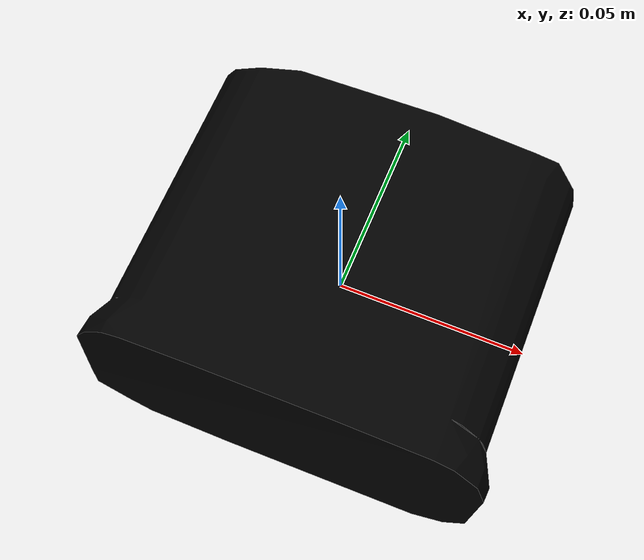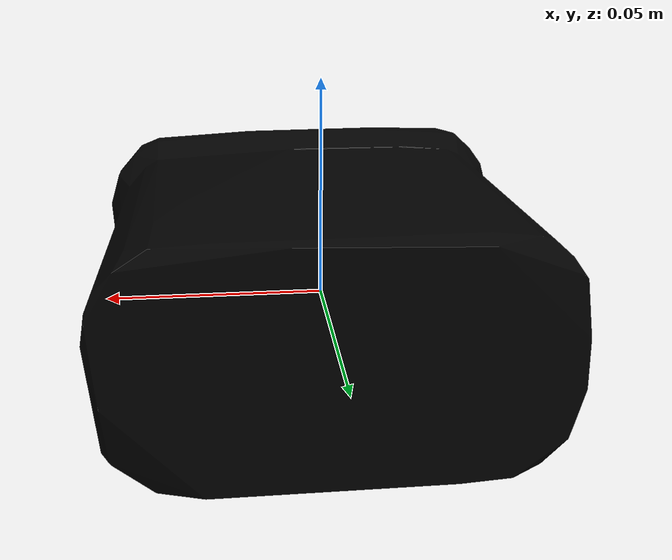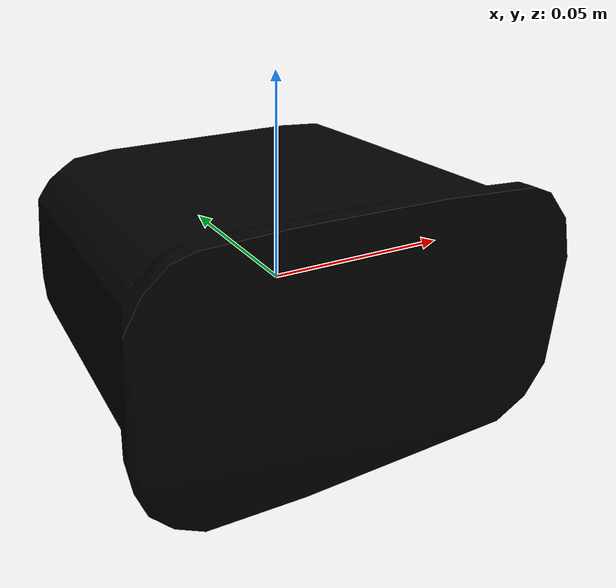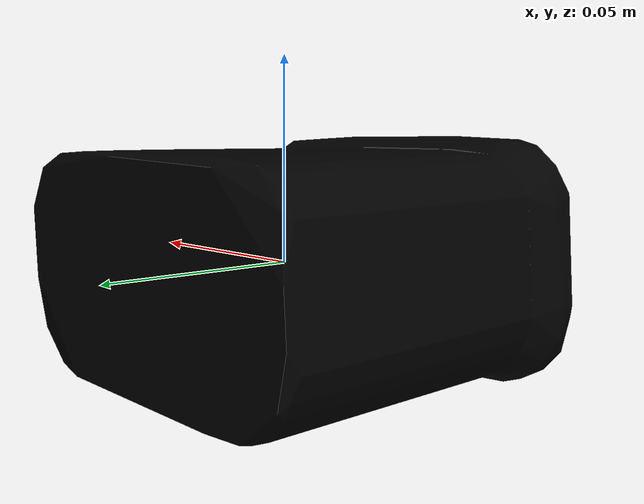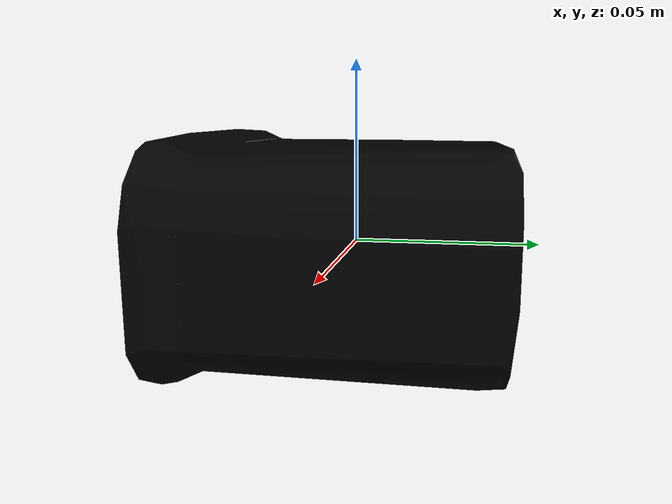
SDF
<?xml version="1.0"?>
<sdf version="1.4">
  <model name="010_potted_meat_can_textured">
    <pose>0 0 0  0 0 0</pose>
    <link name="body">
      <inertial>
        <mass> 1.0 </mass>
        <pose>0 0 0 0 0 0</pose>
        <inertia>
          <ixx>0.0007038460154719242</ixx>
          <ixy>0.0</ixy>
          <ixz>0.0</ixz>
          <iyy>0.0009115515703070388</iyy>
          <iyz>0.0</iyz>
          <izz>0.0012106718563610365</izz>
        </inertia>
      </inertial>
      <visual name="visual">
        <geometry>
          <mesh>
            <uri>model://010_potted_meat_can_textured/textured.dae</uri>
          </mesh>
        </geometry>
        <pose>0.03398767658111898 0.03831865901066023 0.024096547999997914 1.5600212071936326 0.05507160743692378 0.0060421613911172825</pose>
      </visual>
      <collision name="collision">
        <geometry>
          <mesh>
            <uri>model://010_potted_meat_can_textured/textured.col.dae</uri>
          </mesh>
        </geometry>
        <max_contacts>10</max_contacts>
        <surface>
          <friction>
            <ode>
              <mu>0.8</mu>
              <mu2>0.8</mu2>
              <slip1>0</slip1>
              <slip2>0</slip2>
            </ode>
            <torsional>
              <ode/>
            </torsional>
          </friction>
          <contact>
            <ode>
              <kp>1000000.0</kp>
              <kd>1.0</kd>
              <max_vel>0.0</max_vel>
            </ode>
          </contact>
        </surface>
        <pose>0.03398767658111898 0.03831865901066023 0.024096547999997914 1.5600212071936326 0.05507160743692378 0.0060421613911172825</pose>
      </collision>
    </link>
  </model>
</sdf>
